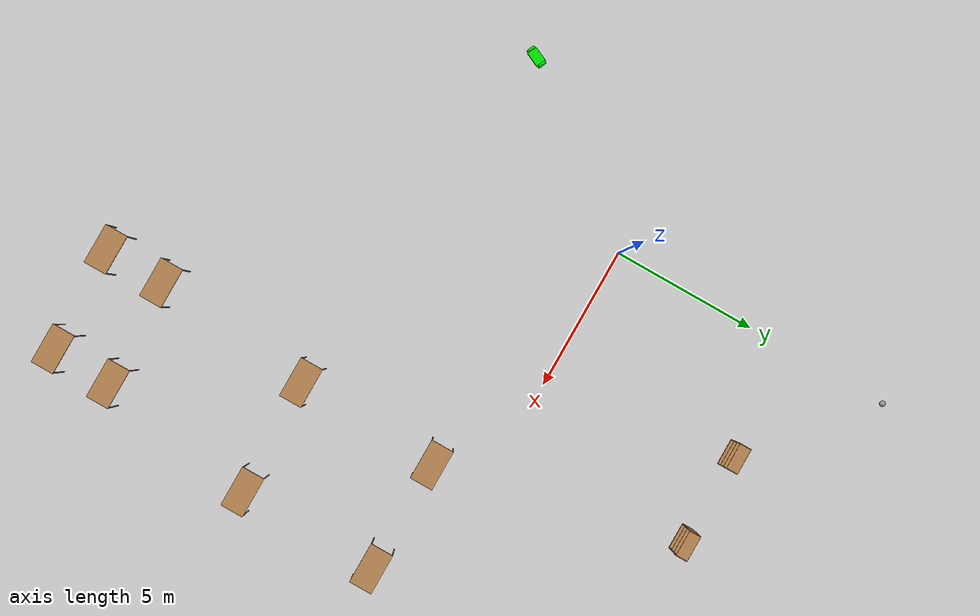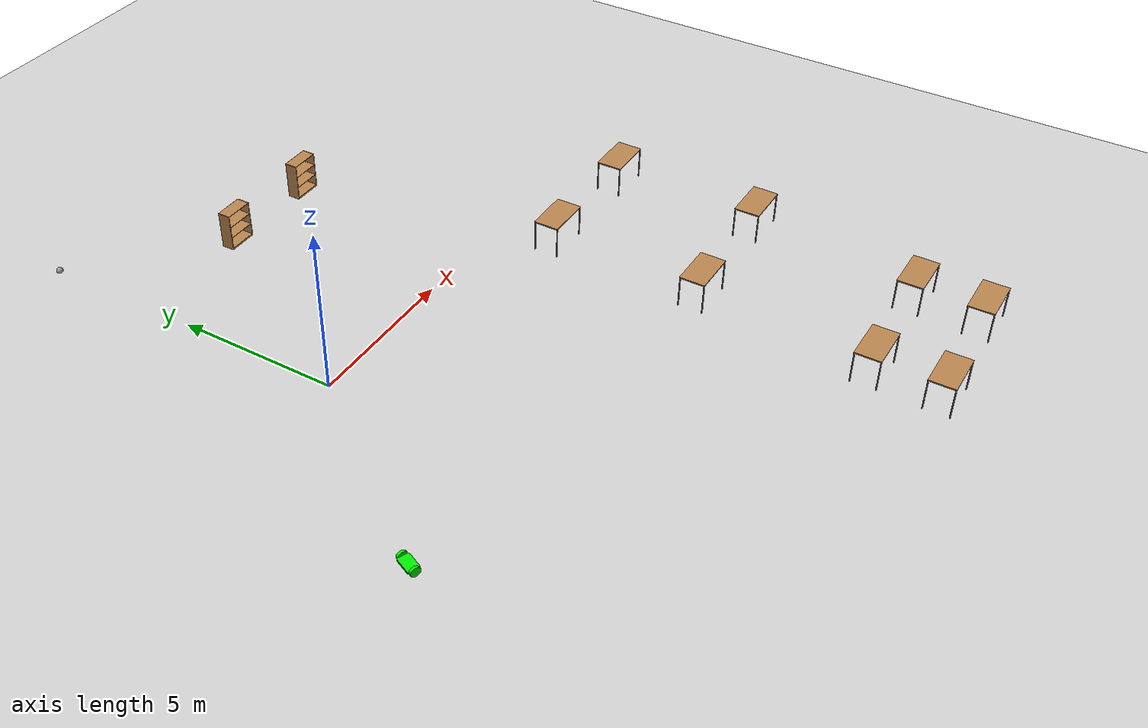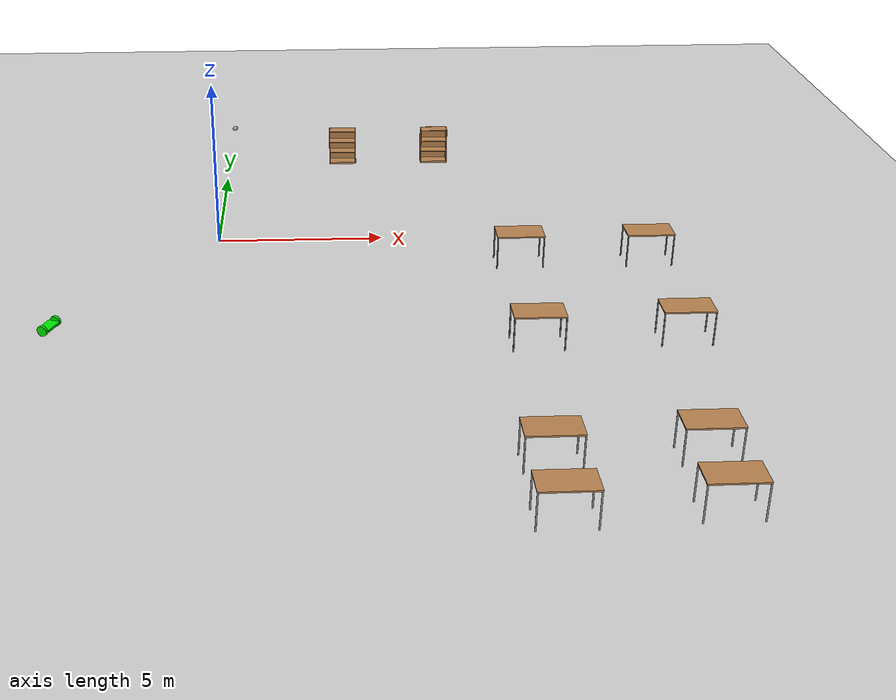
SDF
<sdf version="1.6">
 <world name="default">
  <model name="ground_plane">
   <static>1</static>
   <link name="link">
    <collision name="collision">
     <geometry><plane><normal>0 0 1</normal><size>100 100</size></plane></geometry>
     <surface><friction><ode><mu>100</mu><mu2>50</mu2></ode></friction></surface>
    </collision>
    <visual name="visual">
     <cast_shadows>0</cast_shadows>
     <geometry><plane><normal>0 0 1</normal><size>100 100</size></plane></geometry>
     <material>
      <script><uri>file://media/materials/scripts/gazebo.material</uri><name>Gazebo/Grey</name></script>
     </material>
    </visual>
   </link>
  </model>
  <model name="table">
   <static>0</static>
   <link name="link">
    <collision name="surface">
     <pose>0 0 1 0 -0 0</pose>
     <geometry><box><size>1.5 0.8 0.03</size></box></geometry>
     <surface><friction><ode><mu>0.6</mu><mu2>0.6</mu2></ode></friction></surface>
    </collision>
    <visual name="visual1">
     <pose>0 0 1 0 -0 0</pose>
     <geometry><box><size>1.4 0.8 0.04</size></box></geometry>
     <material>
      <script><uri>file://media/materials/scripts/gazebo.material</uri><name>Gazebo/Wood</name></script>
     </material>
    </visual>
    <collision name="front_left_leg">
     <pose>0.68 0.38 0.5 0 -0 0</pose>
     <geometry><cylinder><radius>0.02</radius><length>1</length></cylinder></geometry>
    </collision>
    <visual name="front_left_leg">
     <pose>0.68 0.38 0.5 0 -0 0</pose>
     <geometry><cylinder><radius>0.02</radius><length>1</length></cylinder></geometry>
     <material>
      <script><uri>file://media/materials/scripts/gazebo.material</uri><name>Gazebo/Grey</name></script>
     </material>
    </visual>
    <collision name="front_right_leg">
     <pose>0.68 -0.38 0.5 0 -0 0</pose>
     <geometry><cylinder><radius>0.02</radius><length>1</length></cylinder></geometry>
    </collision>
    <visual name="front_right_leg">
     <pose>0.68 -0.38 0.5 0 -0 0</pose>
     <geometry><cylinder><radius>0.02</radius><length>1</length></cylinder></geometry>
     <material>
      <script><uri>file://media/materials/scripts/gazebo.material</uri><name>Gazebo/Grey</name></script>
     </material>
    </visual>
    <collision name="back_right_leg">
     <pose>-0.68 -0.38 0.5 0 -0 0</pose>
     <geometry><cylinder><radius>0.02</radius><length>1</length></cylinder></geometry>
    </collision>
    <visual name="back_right_leg">
     <pose>-0.68 -0.38 0.5 0 -0 0</pose>
     <geometry><cylinder><radius>0.02</radius><length>1</length></cylinder></geometry>
     <material>
      <script><uri>file://media/materials/scripts/gazebo.material</uri><name>Gazebo/Grey</name></script>
     </material>
    </visual>
    <collision name="back_left_leg">
     <pose>-0.68 0.38 0.5 0 -0 0</pose>
     <geometry><cylinder><radius>0.02</radius><length>1</length></cylinder></geometry>
    </collision>
    <visual name="back_left_leg">
     <pose>-0.68 0.38 0.5 0 -0 0</pose>
     <geometry><cylinder><radius>0.02</radius><length>1</length></cylinder></geometry>
     <material>
      <script><uri>file://media/materials/scripts/gazebo.material</uri><name>Gazebo/Grey</name></script>
     </material>
    </visual>
    <inertial>
     <inertia><ixx>1</ixx><ixy>0</ixy><ixz>0</ixz><iyy>1</iyy><iyz>0</iyz><izz>1</izz></inertia>
     <mass>1</mass>
    </inertial>
   </link>
   <pose>8.17547 -14.4149 -9e-06 0 -1e-06 0</pose>
  </model>
  <model name="table_0">
   <static>0</static>
   <link name="link">
    <collision name="surface">
     <pose>0 0 1 0 -0 0</pose>
     <geometry><box><size>1.5 0.8 0.03</size></box></geometry>
     <surface><friction><ode><mu>0.6</mu><mu2>0.6</mu2></ode></friction></surface>
    </collision>
    <visual name="visual1">
     <pose>0 0 1 0 -0 0</pose>
     <geometry><box><size>1.4 0.8 0.04</size></box></geometry>
     <material>
      <script><uri>file://media/materials/scripts/gazebo.material</uri><name>Gazebo/Wood</name></script>
     </material>
    </visual>
    <collision name="front_left_leg">
     <pose>0.68 0.38 0.5 0 -0 0</pose>
     <geometry><cylinder><radius>0.02</radius><length>1</length></cylinder></geometry>
    </collision>
    <visual name="front_left_leg">
     <pose>0.68 0.38 0.5 0 -0 0</pose>
     <geometry><cylinder><radius>0.02</radius><length>1</length></cylinder></geometry>
     <material>
      <script><uri>file://media/materials/scripts/gazebo.material</uri><name>Gazebo/Grey</name></script>
     </material>
    </visual>
    <collision name="front_right_leg">
     <pose>0.68 -0.38 0.5 0 -0 0</pose>
     <geometry><cylinder><radius>0.02</radius><length>1</length></cylinder></geometry>
    </collision>
    <visual name="front_right_leg">
     <pose>0.68 -0.38 0.5 0 -0 0</pose>
     <geometry><cylinder><radius>0.02</radius><length>1</length></cylinder></geometry>
     <material>
      <script><uri>file://media/materials/scripts/gazebo.material</uri><name>Gazebo/Grey</name></script>
     </material>
    </visual>
    <collision name="back_right_leg">
     <pose>-0.68 -0.38 0.5 0 -0 0</pose>
     <geometry><cylinder><radius>0.02</radius><length>1</length></cylinder></geometry>
    </collision>
    <visual name="back_right_leg">
     <pose>-0.68 -0.38 0.5 0 -0 0</pose>
     <geometry><cylinder><radius>0.02</radius><length>1</length></cylinder></geometry>
     <material>
      <script><uri>file://media/materials/scripts/gazebo.material</uri><name>Gazebo/Grey</name></script>
     </material>
    </visual>
    <collision name="back_left_leg">
     <pose>-0.68 0.38 0.5 0 -0 0</pose>
     <geometry><cylinder><radius>0.02</radius><length>1</length></cylinder></geometry>
    </collision>
    <visual name="back_left_leg">
     <pose>-0.68 0.38 0.5 0 -0 0</pose>
     <geometry><cylinder><radius>0.02</radius><length>1</length></cylinder></geometry>
     <material>
      <script><uri>file://media/materials/scripts/gazebo.material</uri><name>Gazebo/Grey</name></script>
     </material>
    </visual>
    <inertial>
     <inertia><ixx>1</ixx><ixy>0</ixy><ixz>0</ixz><iyy>1</iyy><iyz>0</iyz><izz>1</izz></inertia>
     <mass>1</mass>
    </inertial>
   </link>
   <pose>8.22446 -12.3428 -9e-06 0 -1e-06 0</pose>
  </model>
  <model name="table_1">
   <static>0</static>
   <link name="link">
    <collision name="surface">
     <pose>0 0 1 0 -0 0</pose>
     <geometry><box><size>1.5 0.8 0.03</size></box></geometry>
     <surface><friction><ode><mu>0.6</mu><mu2>0.6</mu2></ode></friction></surface>
    </collision>
    <visual name="visual1">
     <pose>0 0 1 0 -0 0</pose>
     <geometry><box><size>1.4 0.8 0.04</size></box></geometry>
     <material>
      <script><uri>file://media/materials/scripts/gazebo.material</uri><name>Gazebo/Wood</name></script>
     </material>
    </visual>
    <collision name="front_left_leg">
     <pose>0.68 0.38 0.5 0 -0 0</pose>
     <geometry><cylinder><radius>0.02</radius><length>1</length></cylinder></geometry>
    </collision>
    <visual name="front_left_leg">
     <pose>0.68 0.38 0.5 0 -0 0</pose>
     <geometry><cylinder><radius>0.02</radius><length>1</length></cylinder></geometry>
     <material>
      <script><uri>file://media/materials/scripts/gazebo.material</uri><name>Gazebo/Grey</name></script>
     </material>
    </visual>
    <collision name="front_right_leg">
     <pose>0.68 -0.38 0.5 0 -0 0</pose>
     <geometry><cylinder><radius>0.02</radius><length>1</length></cylinder></geometry>
    </collision>
    <visual name="front_right_leg">
     <pose>0.68 -0.38 0.5 0 -0 0</pose>
     <geometry><cylinder><radius>0.02</radius><length>1</length></cylinder></geometry>
     <material>
      <script><uri>file://media/materials/scripts/gazebo.material</uri><name>Gazebo/Grey</name></script>
     </material>
    </visual>
    <collision name="back_right_leg">
     <pose>-0.68 -0.38 0.5 0 -0 0</pose>
     <geometry><cylinder><radius>0.02</radius><length>1</length></cylinder></geometry>
    </collision>
    <visual name="back_right_leg">
     <pose>-0.68 -0.38 0.5 0 -0 0</pose>
     <geometry><cylinder><radius>0.02</radius><length>1</length></cylinder></geometry>
     <material>
      <script><uri>file://media/materials/scripts/gazebo.material</uri><name>Gazebo/Grey</name></script>
     </material>
    </visual>
    <collision name="back_left_leg">
     <pose>-0.68 0.38 0.5 0 -0 0</pose>
     <geometry><cylinder><radius>0.02</radius><length>1</length></cylinder></geometry>
    </collision>
    <visual name="back_left_leg">
     <pose>-0.68 0.38 0.5 0 -0 0</pose>
     <geometry><cylinder><radius>0.02</radius><length>1</length></cylinder></geometry>
     <material>
      <script><uri>file://media/materials/scripts/gazebo.material</uri><name>Gazebo/Grey</name></script>
     </material>
    </visual>
    <inertial>
     <inertia><ixx>1</ixx><ixy>0</ixy><ixz>0</ixz><iyy>1</iyy><iyz>0</iyz><izz>1</izz></inertia>
     <mass>1</mass>
    </inertial>
   </link>
   <pose>11.7764 -14.2937 -9e-06 0 -1e-06 0</pose>
  </model>
  <model name="table_2">
   <static>0</static>
   <link name="link">
    <collision name="surface">
     <pose>0 0 1 0 -0 0</pose>
     <geometry><box><size>1.5 0.8 0.03</size></box></geometry>
     <surface><friction><ode><mu>0.6</mu><mu2>0.6</mu2></ode></friction></surface>
    </collision>
    <visual name="visual1">
     <pose>0 0 1 0 -0 0</pose>
     <geometry><box><size>1.4 0.8 0.04</size></box></geometry>
     <material>
      <script><uri>file://media/materials/scripts/gazebo.material</uri><name>Gazebo/Wood</name></script>
     </material>
    </visual>
    <collision name="front_left_leg">
     <pose>0.68 0.38 0.5 0 -0 0</pose>
     <geometry><cylinder><radius>0.02</radius><length>1</length></cylinder></geometry>
    </collision>
    <visual name="front_left_leg">
     <pose>0.68 0.38 0.5 0 -0 0</pose>
     <geometry><cylinder><radius>0.02</radius><length>1</length></cylinder></geometry>
     <material>
      <script><uri>file://media/materials/scripts/gazebo.material</uri><name>Gazebo/Grey</name></script>
     </material>
    </visual>
    <collision name="front_right_leg">
     <pose>0.68 -0.38 0.5 0 -0 0</pose>
     <geometry><cylinder><radius>0.02</radius><length>1</length></cylinder></geometry>
    </collision>
    <visual name="front_right_leg">
     <pose>0.68 -0.38 0.5 0 -0 0</pose>
     <geometry><cylinder><radius>0.02</radius><length>1</length></cylinder></geometry>
     <material>
      <script><uri>file://media/materials/scripts/gazebo.material</uri><name>Gazebo/Grey</name></script>
     </material>
    </visual>
    <collision name="back_right_leg">
     <pose>-0.68 -0.38 0.5 0 -0 0</pose>
     <geometry><cylinder><radius>0.02</radius><length>1</length></cylinder></geometry>
    </collision>
    <visual name="back_right_leg">
     <pose>-0.68 -0.38 0.5 0 -0 0</pose>
     <geometry><cylinder><radius>0.02</radius><length>1</length></cylinder></geometry>
     <material>
      <script><uri>file://media/materials/scripts/gazebo.material</uri><name>Gazebo/Grey</name></script>
     </material>
    </visual>
    <collision name="back_left_leg">
     <pose>-0.68 0.38 0.5 0 -0 0</pose>
     <geometry><cylinder><radius>0.02</radius><length>1</length></cylinder></geometry>
    </collision>
    <visual name="back_left_leg">
     <pose>-0.68 0.38 0.5 0 -0 0</pose>
     <geometry><cylinder><radius>0.02</radius><length>1</length></cylinder></geometry>
     <material>
      <script><uri>file://media/materials/scripts/gazebo.material</uri><name>Gazebo/Grey</name></script>
     </material>
    </visual>
    <inertial>
     <inertia><ixx>1</ixx><ixy>0</ixy><ixz>0</ixz><iyy>1</iyy><iyz>0</iyz><izz>1</izz></inertia>
     <mass>1</mass>
    </inertial>
   </link>
   <pose>11.8686 -12.2062 -9e-06 0 -1e-06 0</pose>
  </model>
  <model name="table_3">
   <static>0</static>
   <link name="link">
    <collision name="surface">
     <pose>0 0 1 0 -0 0</pose>
     <geometry><box><size>1.5 0.8 0.03</size></box></geometry>
     <surface><friction><ode><mu>0.6</mu><mu2>0.6</mu2></ode></friction></surface>
    </collision>
    <visual name="visual1">
     <pose>0 0 1 0 -0 0</pose>
     <geometry><box><size>1.4 0.8 0.04</size></box></geometry>
     <material>
      <script><uri>file://media/materials/scripts/gazebo.material</uri><name>Gazebo/Wood</name></script>
     </material>
    </visual>
    <collision name="front_left_leg">
     <pose>0.68 0.38 0.5 0 -0 0</pose>
     <geometry><cylinder><radius>0.02</radius><length>1</length></cylinder></geometry>
    </collision>
    <visual name="front_left_leg">
     <pose>0.68 0.38 0.5 0 -0 0</pose>
     <geometry><cylinder><radius>0.02</radius><length>1</length></cylinder></geometry>
     <material>
      <script><uri>file://media/materials/scripts/gazebo.material</uri><name>Gazebo/Grey</name></script>
     </material>
    </visual>
    <collision name="front_right_leg">
     <pose>0.68 -0.38 0.5 0 -0 0</pose>
     <geometry><cylinder><radius>0.02</radius><length>1</length></cylinder></geometry>
    </collision>
    <visual name="front_right_leg">
     <pose>0.68 -0.38 0.5 0 -0 0</pose>
     <geometry><cylinder><radius>0.02</radius><length>1</length></cylinder></geometry>
     <material>
      <script><uri>file://media/materials/scripts/gazebo.material</uri><name>Gazebo/Grey</name></script>
     </material>
    </visual>
    <collision name="back_right_leg">
     <pose>-0.68 -0.38 0.5 0 -0 0</pose>
     <geometry><cylinder><radius>0.02</radius><length>1</length></cylinder></geometry>
    </collision>
    <visual name="back_right_leg">
     <pose>-0.68 -0.38 0.5 0 -0 0</pose>
     <geometry><cylinder><radius>0.02</radius><length>1</length></cylinder></geometry>
     <material>
      <script><uri>file://media/materials/scripts/gazebo.material</uri><name>Gazebo/Grey</name></script>
     </material>
    </visual>
    <collision name="back_left_leg">
     <pose>-0.68 0.38 0.5 0 -0 0</pose>
     <geometry><cylinder><radius>0.02</radius><length>1</length></cylinder></geometry>
    </collision>
    <visual name="back_left_leg">
     <pose>-0.68 0.38 0.5 0 -0 0</pose>
     <geometry><cylinder><radius>0.02</radius><length>1</length></cylinder></geometry>
     <material>
      <script><uri>file://media/materials/scripts/gazebo.material</uri><name>Gazebo/Grey</name></script>
     </material>
    </visual>
    <inertial>
     <inertia><ixx>1</ixx><ixy>0</ixy><ixz>0</ixz><iyy>1</iyy><iyz>0</iyz><izz>1</izz></inertia>
     <mass>1</mass>
    </inertial>
   </link>
   <pose>8.77346 -6.86225 -9e-06 0 -1e-06 0</pose>
  </model>
  <model name="table_4">
   <static>0</static>
   <link name="link">
    <collision name="surface">
     <pose>0 0 1 0 -0 0</pose>
     <geometry><box><size>1.5 0.8 0.03</size></box></geometry>
     <surface><friction><ode><mu>0.6</mu><mu2>0.6</mu2></ode></friction></surface>
    </collision>
    <visual name="visual1">
     <pose>0 0 1 0 -0 0</pose>
     <geometry><box><size>1.4 0.8 0.04</size></box></geometry>
     <material>
      <script><uri>file://media/materials/scripts/gazebo.material</uri><name>Gazebo/Wood</name></script>
     </material>
    </visual>
    <collision name="front_left_leg">
     <pose>0.68 0.38 0.5 0 -0 0</pose>
     <geometry><cylinder><radius>0.02</radius><length>1</length></cylinder></geometry>
    </collision>
    <visual name="front_left_leg">
     <pose>0.68 0.38 0.5 0 -0 0</pose>
     <geometry><cylinder><radius>0.02</radius><length>1</length></cylinder></geometry>
     <material>
      <script><uri>file://media/materials/scripts/gazebo.material</uri><name>Gazebo/Grey</name></script>
     </material>
    </visual>
    <collision name="front_right_leg">
     <pose>0.68 -0.38 0.5 0 -0 0</pose>
     <geometry><cylinder><radius>0.02</radius><length>1</length></cylinder></geometry>
    </collision>
    <visual name="front_right_leg">
     <pose>0.68 -0.38 0.5 0 -0 0</pose>
     <geometry><cylinder><radius>0.02</radius><length>1</length></cylinder></geometry>
     <material>
      <script><uri>file://media/materials/scripts/gazebo.material</uri><name>Gazebo/Grey</name></script>
     </material>
    </visual>
    <collision name="back_right_leg">
     <pose>-0.68 -0.38 0.5 0 -0 0</pose>
     <geometry><cylinder><radius>0.02</radius><length>1</length></cylinder></geometry>
    </collision>
    <visual name="back_right_leg">
     <pose>-0.68 -0.38 0.5 0 -0 0</pose>
     <geometry><cylinder><radius>0.02</radius><length>1</length></cylinder></geometry>
     <material>
      <script><uri>file://media/materials/scripts/gazebo.material</uri><name>Gazebo/Grey</name></script>
     </material>
    </visual>
    <collision name="back_left_leg">
     <pose>-0.68 0.38 0.5 0 -0 0</pose>
     <geometry><cylinder><radius>0.02</radius><length>1</length></cylinder></geometry>
    </collision>
    <visual name="back_left_leg">
     <pose>-0.68 0.38 0.5 0 -0 0</pose>
     <geometry><cylinder><radius>0.02</radius><length>1</length></cylinder></geometry>
     <material>
      <script><uri>file://media/materials/scripts/gazebo.material</uri><name>Gazebo/Grey</name></script>
     </material>
    </visual>
    <inertial>
     <inertia><ixx>1</ixx><ixy>0</ixy><ixz>0</ixz><iyy>1</iyy><iyz>0</iyz><izz>1</izz></inertia>
     <mass>1</mass>
    </inertial>
   </link>
   <pose>12.7323 -6.75052 -9e-06 0 -1e-06 0</pose>
  </model>
  <model name="table_5">
   <static>0</static>
   <link name="link">
    <collision name="surface">
     <pose>0 0 1 0 -0 0</pose>
     <geometry><box><size>1.5 0.8 0.03</size></box></geometry>
     <surface><friction><ode><mu>0.6</mu><mu2>0.6</mu2></ode></friction></surface>
    </collision>
    <visual name="visual1">
     <pose>0 0 1 0 -0 0</pose>
     <geometry><box><size>1.4 0.8 0.04</size></box></geometry>
     <material>
      <script><uri>file://media/materials/scripts/gazebo.material</uri><name>Gazebo/Wood</name></script>
     </material>
    </visual>
    <collision name="front_left_leg">
     <pose>0.68 0.38 0.5 0 -0 0</pose>
     <geometry><cylinder><radius>0.02</radius><length>1</length></cylinder></geometry>
    </collision>
    <visual name="front_left_leg">
     <pose>0.68 0.38 0.5 0 -0 0</pose>
     <geometry><cylinder><radius>0.02</radius><length>1</length></cylinder></geometry>
     <material>
      <script><uri>file://media/materials/scripts/gazebo.material</uri><name>Gazebo/Grey</name></script>
     </material>
    </visual>
    <collision name="front_right_leg">
     <pose>0.68 -0.38 0.5 0 -0 0</pose>
     <geometry><cylinder><radius>0.02</radius><length>1</length></cylinder></geometry>
    </collision>
    <visual name="front_right_leg">
     <pose>0.68 -0.38 0.5 0 -0 0</pose>
     <geometry><cylinder><radius>0.02</radius><length>1</length></cylinder></geometry>
     <material>
      <script><uri>file://media/materials/scripts/gazebo.material</uri><name>Gazebo/Grey</name></script>
     </material>
    </visual>
    <collision name="back_right_leg">
     <pose>-0.68 -0.38 0.5 0 -0 0</pose>
     <geometry><cylinder><radius>0.02</radius><length>1</length></cylinder></geometry>
    </collision>
    <visual name="back_right_leg">
     <pose>-0.68 -0.38 0.5 0 -0 0</pose>
     <geometry><cylinder><radius>0.02</radius><length>1</length></cylinder></geometry>
     <material>
      <script><uri>file://media/materials/scripts/gazebo.material</uri><name>Gazebo/Grey</name></script>
     </material>
    </visual>
    <collision name="back_left_leg">
     <pose>-0.68 0.38 0.5 0 -0 0</pose>
     <geometry><cylinder><radius>0.02</radius><length>1</length></cylinder></geometry>
    </collision>
    <visual name="back_left_leg">
     <pose>-0.68 0.38 0.5 0 -0 0</pose>
     <geometry><cylinder><radius>0.02</radius><length>1</length></cylinder></geometry>
     <material>
      <script><uri>file://media/materials/scripts/gazebo.material</uri><name>Gazebo/Grey</name></script>
     </material>
    </visual>
    <inertial>
     <inertia><ixx>1</ixx><ixy>0</ixy><ixz>0</ixz><iyy>1</iyy><iyz>0</iyz><izz>1</izz></inertia>
     <mass>1</mass>
    </inertial>
   </link>
   <pose>8.98282 -1.91953 -9e-06 0 -1e-06 0</pose>
  </model>
  <model name="table_6">
   <static>0</static>
   <link name="link">
    <collision name="surface">
     <pose>0 0 1 0 -0 0</pose>
     <geometry><box><size>1.5 0.8 0.03</size></box></geometry>
     <surface><friction><ode><mu>0.6</mu><mu2>0.6</mu2></ode></friction></surface>
    </collision>
    <visual name="visual1">
     <pose>0 0 1 0 -0 0</pose>
     <geometry><box><size>1.4 0.8 0.04</size></box></geometry>
     <material>
      <script><uri>file://media/materials/scripts/gazebo.material</uri><name>Gazebo/Wood</name></script>
     </material>
    </visual>
    <collision name="front_left_leg">
     <pose>0.68 0.38 0.5 0 -0 0</pose>
     <geometry><cylinder><radius>0.02</radius><length>1</length></cylinder></geometry>
    </collision>
    <visual name="front_left_leg">
     <pose>0.68 0.38 0.5 0 -0 0</pose>
     <geometry><cylinder><radius>0.02</radius><length>1</length></cylinder></geometry>
     <material>
      <script><uri>file://media/materials/scripts/gazebo.material</uri><name>Gazebo/Grey</name></script>
     </material>
    </visual>
    <collision name="front_right_leg">
     <pose>0.68 -0.38 0.5 0 -0 0</pose>
     <geometry><cylinder><radius>0.02</radius><length>1</length></cylinder></geometry>
    </collision>
    <visual name="front_right_leg">
     <pose>0.68 -0.38 0.5 0 -0 0</pose>
     <geometry><cylinder><radius>0.02</radius><length>1</length></cylinder></geometry>
     <material>
      <script><uri>file://media/materials/scripts/gazebo.material</uri><name>Gazebo/Grey</name></script>
     </material>
    </visual>
    <collision name="back_right_leg">
     <pose>-0.68 -0.38 0.5 0 -0 0</pose>
     <geometry><cylinder><radius>0.02</radius><length>1</length></cylinder></geometry>
    </collision>
    <visual name="back_right_leg">
     <pose>-0.68 -0.38 0.5 0 -0 0</pose>
     <geometry><cylinder><radius>0.02</radius><length>1</length></cylinder></geometry>
     <material>
      <script><uri>file://media/materials/scripts/gazebo.material</uri><name>Gazebo/Grey</name></script>
     </material>
    </visual>
    <collision name="back_left_leg">
     <pose>-0.68 0.38 0.5 0 -0 0</pose>
     <geometry><cylinder><radius>0.02</radius><length>1</length></cylinder></geometry>
    </collision>
    <visual name="back_left_leg">
     <pose>-0.68 0.38 0.5 0 -0 0</pose>
     <geometry><cylinder><radius>0.02</radius><length>1</length></cylinder></geometry>
     <material>
      <script><uri>file://media/materials/scripts/gazebo.material</uri><name>Gazebo/Grey</name></script>
     </material>
    </visual>
    <inertial>
     <inertia><ixx>1</ixx><ixy>0</ixy><ixz>0</ixz><iyy>1</iyy><iyz>0</iyz><izz>1</izz></inertia>
     <mass>1</mass>
    </inertial>
   </link>
   <pose>12.8191 -1.96051 -9e-06 0 -1e-06 0</pose>
  </model>
  <model name="bookshelf">
   <static>1</static>
   <link name="link">
    <inertial><mass>1</mass></inertial>
    <collision name="back">
     <pose>0 0.005 0.6 0 -0 0</pose>
     <geometry><box><size>0.9 0.01 1.2</size></box></geometry>
    </collision>
    <visual name="visual1">
     <pose>0 0.005 0.6 0 -0 0</pose>
     <geometry><box><size>0.9 0.01 1.2</size></box></geometry>
     <material>
      <script><uri>file://media/materials/scripts/gazebo.material</uri><name>Gazebo/Wood</name></script>
     </material>
    </visual>
    <collision name="left_side">
     <pose>0.45 -0.195 0.6 0 -0 0</pose>
     <geometry><box><size>0.02 0.4 1.2</size></box></geometry>
    </collision>
    <visual name="visual2">
     <pose>0.45 -0.195 0.6 0 -0 0</pose>
     <geometry><box><size>0.02 0.4 1.2</size></box></geometry>
     <material>
      <script><uri>file://media/materials/scripts/gazebo.material</uri><name>Gazebo/Wood</name></script>
     </material>
    </visual>
    <collision name="right_side">
     <pose>-0.45 -0.195 0.6 0 -0 0</pose>
     <geometry><box><size>0.02 0.4 1.2</size></box></geometry>
    </collision>
    <visual name="visual3">
     <pose>-0.45 -0.195 0.6 0 -0 0</pose>
     <geometry><box><size>0.02 0.4 1.2</size></box></geometry>
     <material>
      <script><uri>file://media/materials/scripts/gazebo.material</uri><name>Gazebo/Wood</name></script>
     </material>
    </visual>
    <collision name="bottom">
     <pose>0 -0.195 0.03 0 -0 0</pose>
     <geometry><box><size>0.88 0.4 0.06</size></box></geometry>
    </collision>
    <visual name="visual4">
     <pose>0 -0.195 0.03 0 -0 0</pose>
     <geometry><box><size>0.88 0.4 0.06</size></box></geometry>
     <material>
      <script><uri>file://media/materials/scripts/gazebo.material</uri><name>Gazebo/Wood</name></script>
     </material>
    </visual>
    <collision name="top">
     <pose>0 -0.195 1.19 0 -0 0</pose>
     <geometry><box><size>0.88 0.4 0.02</size></box></geometry>
    </collision>
    <visual name="visual5">
     <pose>0 -0.195 1.19 0 -0 0</pose>
     <geometry><box><size>0.88 0.4 0.02</size></box></geometry>
     <material>
      <script><uri>file://media/materials/scripts/gazebo.material</uri><name>Gazebo/Wood</name></script>
     </material>
    </visual>
    <collision name="low_shelf">
     <pose>0 -0.195 0.43 0 -0 0</pose>
     <geometry><box><size>0.88 0.4 0.02</size></box></geometry>
    </collision>
    <visual name="visual6">
     <pose>0 -0.195 0.43 0 -0 0</pose>
     <geometry><box><size>0.88 0.4 0.02</size></box></geometry>
     <material>
      <script><uri>file://media/materials/scripts/gazebo.material</uri><name>Gazebo/Wood</name></script>
     </material>
    </visual>
    <collision name="high_shelf">
     <pose>0 -0.195 0.8 0 -0 0</pose>
     <geometry><box><size>0.88 0.4 0.02</size></box></geometry>
    </collision>
    <visual name="visual7">
     <pose>0 -0.195 0.8 0 -0 0</pose>
     <geometry><box><size>0.88 0.4 0.02</size></box></geometry>
     <material>
      <script><uri>file://media/materials/scripts/gazebo.material</uri><name>Gazebo/Wood</name></script>
     </material>
    </visual>
   </link>
   <pose>3.94932 6.64331 0 0 -0 0</pose>
  </model>
  <model name="bookshelf_0">
   <static>1</static>
   <link name="link">
    <inertial><mass>1</mass></inertial>
    <collision name="back">
     <pose>0 0.005 0.6 0 -0 0</pose>
     <geometry><box><size>0.9 0.01 1.2</size></box></geometry>
    </collision>
    <visual name="visual1">
     <pose>0 0.005 0.6 0 -0 0</pose>
     <geometry><box><size>0.9 0.01 1.2</size></box></geometry>
     <material>
      <script><uri>file://media/materials/scripts/gazebo.material</uri><name>Gazebo/Wood</name></script>
     </material>
    </visual>
    <collision name="left_side">
     <pose>0.45 -0.195 0.6 0 -0 0</pose>
     <geometry><box><size>0.02 0.4 1.2</size></box></geometry>
    </collision>
    <visual name="visual2">
     <pose>0.45 -0.195 0.6 0 -0 0</pose>
     <geometry><box><size>0.02 0.4 1.2</size></box></geometry>
     <material>
      <script><uri>file://media/materials/scripts/gazebo.material</uri><name>Gazebo/Wood</name></script>
     </material>
    </visual>
    <collision name="right_side">
     <pose>-0.45 -0.195 0.6 0 -0 0</pose>
     <geometry><box><size>0.02 0.4 1.2</size></box></geometry>
    </collision>
    <visual name="visual3">
     <pose>-0.45 -0.195 0.6 0 -0 0</pose>
     <geometry><box><size>0.02 0.4 1.2</size></box></geometry>
     <material>
      <script><uri>file://media/materials/scripts/gazebo.material</uri><name>Gazebo/Wood</name></script>
     </material>
    </visual>
    <collision name="bottom">
     <pose>0 -0.195 0.03 0 -0 0</pose>
     <geometry><box><size>0.88 0.4 0.06</size></box></geometry>
    </collision>
    <visual name="visual4">
     <pose>0 -0.195 0.03 0 -0 0</pose>
     <geometry><box><size>0.88 0.4 0.06</size></box></geometry>
     <material>
      <script><uri>file://media/materials/scripts/gazebo.material</uri><name>Gazebo/Wood</name></script>
     </material>
    </visual>
    <collision name="top">
     <pose>0 -0.195 1.19 0 -0 0</pose>
     <geometry><box><size>0.88 0.4 0.02</size></box></geometry>
    </collision>
    <visual name="visual5">
     <pose>0 -0.195 1.19 0 -0 0</pose>
     <geometry><box><size>0.88 0.4 0.02</size></box></geometry>
     <material>
      <script><uri>file://media/materials/scripts/gazebo.material</uri><name>Gazebo/Wood</name></script>
     </material>
    </visual>
    <collision name="low_shelf">
     <pose>0 -0.195 0.43 0 -0 0</pose>
     <geometry><box><size>0.88 0.4 0.02</size></box></geometry>
    </collision>
    <visual name="visual6">
     <pose>0 -0.195 0.43 0 -0 0</pose>
     <geometry><box><size>0.88 0.4 0.02</size></box></geometry>
     <material>
      <script><uri>file://media/materials/scripts/gazebo.material</uri><name>Gazebo/Wood</name></script>
     </material>
    </visual>
    <collision name="high_shelf">
     <pose>0 -0.195 0.8 0 -0 0</pose>
     <geometry><box><size>0.88 0.4 0.02</size></box></geometry>
    </collision>
    <visual name="visual7">
     <pose>0 -0.195 0.8 0 -0 0</pose>
     <geometry><box><size>0.88 0.4 0.02</size></box></geometry>
     <material>
      <script><uri>file://media/materials/scripts/gazebo.material</uri><name>Gazebo/Wood</name></script>
     </material>
    </visual>
   </link>
   <pose>7.14671 6.6218 0 0 -0 0</pose>
  </model>
  <model name="Green_Robot_0">
   <link name="link_0">
    <pose>0 0.519998 0.00436 0 -0 0</pose>
    <inertial>
     <mass>0.0120762</mass>
     <inertia>
      <ixx>0.000284555</ixx>
      <ixy>0</ixy>
      <ixz>0</ixz>
      <iyy>0.000129171</iyy>
      <iyz>0</iyz>
      <izz>0.000405236</izz>
     </inertia>
    </inertial>
    <visual name="visual">
     <geometry><box><size>0.352322 0.527763 0.064937</size></box></geometry>
     <material>
      <lighting>1</lighting>
      <script><uri>file://media/materials/scripts/gazebo.material</uri><name>Gazebo/Grey</name></script>
      <ambient>0 0.9 0 1</ambient>
      <diffuse>0 0.9 0 1</diffuse>
      <specular>0.01 0.01 0.01 1</specular>
      <emissive>0 0 0 1</emissive>
      <shader type="vertex"><normal_map>__default__</normal_map></shader>
     </material>
    </visual>
    <collision name="collision">
     <geometry><box><size>0.352322 0.527763 0.064937</size></box></geometry>
     <surface>
      <friction>
       <ode><mu>1</mu><mu2>1</mu2><fdir1>0 0 0</fdir1><slip1>0</slip1><slip2>0</slip2></ode>
       <torsional>
        <coefficient>1</coefficient>
        <patch_radius>0</patch_radius>
        <surface_radius>0</surface_radius>
        <use_patch_radius>1</use_patch_radius>
        <ode><slip>0</slip></ode>
       </torsional>
      </friction>
      <bounce><restitution_coefficient>0</restitution_coefficient><threshold>1e+06</threshold></bounce>
      <contact>
       <collide_without_contact>0</collide_without_contact>
       <collide_without_contact_bitmask>1</collide_without_contact_bitmask>
       <collide_bitmask>1</collide_bitmask>
       <ode>
        <soft_cfm>0</soft_cfm>
        <soft_erp>0.2</soft_erp>
        <kp>1e+13</kp>
        <kd>1</kd>
        <max_vel>0.01</max_vel>
        <min_depth>0</min_depth>
       </ode>
       <bullet>
        <split_impulse>1</split_impulse>
        <split_impulse_penetration_threshold>-0.01</split_impulse_penetration_threshold>
        <soft_cfm>0</soft_cfm>
        <soft_erp>0.2</soft_erp>
        <kp>1e+13</kp>
        <kd>1</kd>
       </bullet>
      </contact>
     </surface>
    </collision>
   </link>
   <link name="link_1_clone">
    <pose>-0 0.781457 0.003711 -1.55458 0 0</pose>
    <inertial>
     <mass>0.00604226</mass>
     <inertia>
      <ixx>3.354e-05</ixx>
      <ixy>0</ixy>
      <ixz>0</ixz>
      <iyy>3.354e-05</iyy>
      <iyz>0</iyz>
      <izz>6.156e-05</izz>
     </inertia>
    </inertial>
    <visual name="visual">
     <pose>0 0 0.04 0 -0 0</pose>
     <geometry><cylinder><radius>0.15</radius><length>0.08</length></cylinder></geometry>
     <material>
      <lighting>1</lighting>
      <script><uri>file://media/materials/scripts/gazebo.material</uri><name>Gazebo/Grey</name></script>
      <ambient>0 0.9 0 1</ambient>
      <diffuse>0 0.9 0 1</diffuse>
      <specular>0.01 0.01 0.01 1</specular>
      <emissive>0 0 0 1</emissive>
      <shader type="vertex"><normal_map>__default__</normal_map></shader>
     </material>
    </visual>
    <collision name="collision">
     <pose>0 0 0.04 0 -0 0</pose>
     <geometry><cylinder><radius>0.15</radius><length>0.08</length></cylinder></geometry>
     <surface>
      <friction>
       <ode><mu>1</mu><mu2>1</mu2><fdir1>0 0 0</fdir1><slip1>0</slip1><slip2>0</slip2></ode>
       <torsional>
        <coefficient>1</coefficient>
        <patch_radius>0</patch_radius>
        <surface_radius>0</surface_radius>
        <use_patch_radius>1</use_patch_radius>
        <ode><slip>0</slip></ode>
       </torsional>
      </friction>
      <bounce><restitution_coefficient>0</restitution_coefficient><threshold>1e+06</threshold></bounce>
      <contact>
       <collide_without_contact>0</collide_without_contact>
       <collide_without_contact_bitmask>1</collide_without_contact_bitmask>
       <collide_bitmask>1</collide_bitmask>
       <ode>
        <soft_cfm>0</soft_cfm>
        <soft_erp>0.2</soft_erp>
        <kp>1e+13</kp>
        <kd>1</kd>
        <max_vel>0.01</max_vel>
        <min_depth>0</min_depth>
       </ode>
       <bullet>
        <split_impulse>1</split_impulse>
        <split_impulse_penetration_threshold>-0.01</split_impulse_penetration_threshold>
        <soft_cfm>0</soft_cfm>
        <soft_erp>0.2</soft_erp>
        <kp>1e+13</kp>
        <kd>1</kd>
       </bullet>
      </contact>
     </surface>
    </collision>
   </link>
   <link name="link_1_clone_clone">
    <pose>0 0.178549 0.003711 -1.55458 0 0</pose>
    <inertial>
     <mass>0.00604226</mass>
     <inertia>
      <ixx>3.354e-05</ixx>
      <ixy>0</ixy>
      <ixz>0</ixz>
      <iyy>3.354e-05</iyy>
      <iyz>0</iyz>
      <izz>6.156e-05</izz>
     </inertia>
    </inertial>
    <visual name="visual">
     <pose>0 0 0.04 0 -0 0</pose>
     <geometry><cylinder><radius>0.15</radius><length>0.08</length></cylinder></geometry>
     <material>
      <lighting>1</lighting>
      <script><uri>file://media/materials/scripts/gazebo.material</uri><name>Gazebo/Grey</name></script>
      <ambient>0 0.9 0 1</ambient>
      <diffuse>0 0.9 0 1</diffuse>
      <specular>0.01 0.01 0.01 1</specular>
      <emissive>0 0 0 1</emissive>
      <shader type="vertex"><normal_map>__default__</normal_map></shader>
     </material>
    </visual>
    <collision name="collision">
     <pose>0 0 0.04 0 -0 0</pose>
     <geometry><cylinder><radius>0.15</radius><length>0.08</length></cylinder></geometry>
     <surface>
      <friction>
       <ode><mu>1</mu><mu2>1</mu2><fdir1>0 0 0</fdir1><slip1>0</slip1><slip2>0</slip2></ode>
       <torsional>
        <coefficient>1</coefficient>
        <patch_radius>0</patch_radius>
        <surface_radius>0</surface_radius>
        <use_patch_radius>1</use_patch_radius>
        <ode><slip>0</slip></ode>
       </torsional>
      </friction>
      <bounce><restitution_coefficient>0</restitution_coefficient><threshold>1e+06</threshold></bounce>
      <contact>
       <collide_without_contact>0</collide_without_contact>
       <collide_without_contact_bitmask>1</collide_without_contact_bitmask>
       <collide_bitmask>1</collide_bitmask>
       <ode>
        <soft_cfm>0</soft_cfm>
        <soft_erp>0.2</soft_erp>
        <kp>1e+13</kp>
        <kd>1</kd>
        <max_vel>0.01</max_vel>
        <min_depth>0</min_depth>
       </ode>
       <bullet>
        <split_impulse>1</split_impulse>
        <split_impulse_penetration_threshold>-0.01</split_impulse_penetration_threshold>
        <soft_cfm>0</soft_cfm>
        <soft_erp>0.2</soft_erp>
        <kp>1e+13</kp>
        <kd>1</kd>
       </bullet>
      </contact>
     </surface>
    </collision>
   </link>
   <joint name="link_0_JOINT_4" type="fixed">
    <parent>link_0</parent>
    <child>link_1_clone_clone</child>
    <physics>
     <ode><limit><cfm>0</cfm><erp>0.2</erp></limit><suspension><cfm>0</cfm><erp>0.2</erp></suspension></ode>
    </physics>
   </joint>
   <joint name="link_0_JOINT_5" type="fixed">
    <parent>link_0</parent>
    <child>link_1_clone</child>
    <physics>
     <ode><limit><cfm>0</cfm><erp>0.2</erp></limit><suspension><cfm>0</cfm><erp>0.2</erp></suspension></ode>
    </physics>
   </joint>
   <static>0</static>
   <pose>-4.45892 -6.02443 0.146264 9e-06 -0.023922 -0.43231</pose>
  </model>
  <model name="my_ball">
   <link name="link_0">
    <pose>0 10 0 0 -0 0</pose>
    <inertial>
     <mass>1</mass>
     <inertia><ixx>0.1</ixx><ixy>0</ixy><ixz>0</ixz><iyy>0.1</iyy><iyz>0</iyz><izz>0.1</izz></inertia>
    </inertial>
    <visual name="visual">
     <geometry><sphere><radius>0.1</radius></sphere></geometry>
     <material>
      <lighting>1</lighting>
      <script><uri>file://media/materials/scripts/gazebo.material</uri><name>Gazebo/Grey</name></script>
      <ambient>1 1 1 1</ambient>
      <diffuse>1 1 1 1</diffuse>
      <specular>1 1 1 1</specular>
      <emissive>1 1 1 1</emissive>
      <shader type="vertex"><normal_map>__default__</normal_map></shader>
     </material>
    </visual>
    <collision name="collision">
     <geometry><sphere><radius>0.1</radius></sphere></geometry>
     <surface>
      <friction>
       <ode><mu>1</mu><mu2>1</mu2><fdir1>0 0 0</fdir1><slip1>0</slip1><slip2>0</slip2></ode>
       <torsional>
        <coefficient>1</coefficient>
        <patch_radius>0</patch_radius>
        <surface_radius>0</surface_radius>
        <use_patch_radius>1</use_patch_radius>
        <ode><slip>0</slip></ode>
       </torsional>
      </friction>
      <bounce><restitution_coefficient>0</restitution_coefficient><threshold>1e+06</threshold></bounce>
      <contact>
       <collide_without_contact>0</collide_without_contact>
       <collide_without_contact_bitmask>1</collide_without_contact_bitmask>
       <collide_bitmask>1</collide_bitmask>
       <ode>
        <soft_cfm>0</soft_cfm>
        <soft_erp>0.2</soft_erp>
        <kp>1e+13</kp>
        <kd>1</kd>
        <max_vel>0.01</max_vel>
        <min_depth>0</min_depth>
       </ode>
       <bullet>
        <split_impulse>1</split_impulse>
        <split_impulse_penetration_threshold>-0.01</split_impulse_penetration_threshold>
        <soft_cfm>0</soft_cfm>
        <soft_erp>0.2</soft_erp>
        <kp>1e+13</kp>
        <kd>1</kd>
       </bullet>
      </contact>
     </surface>
    </collision>
   </link>
   <static>0</static>
  </model>
 </world>
</sdf>
